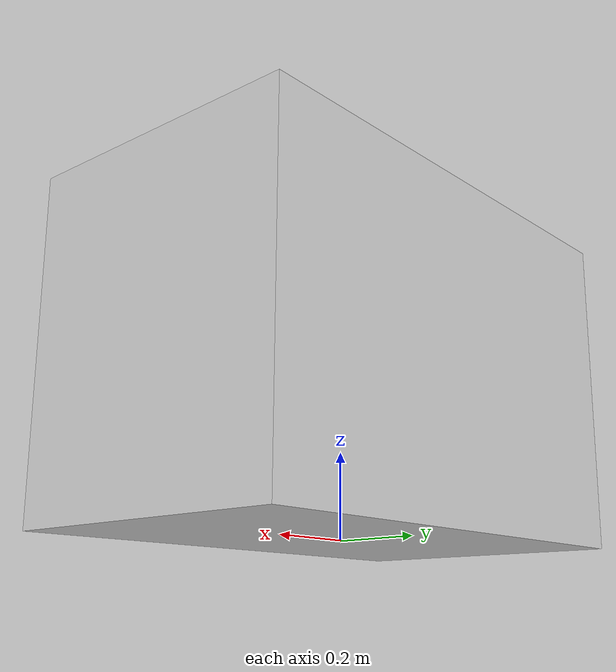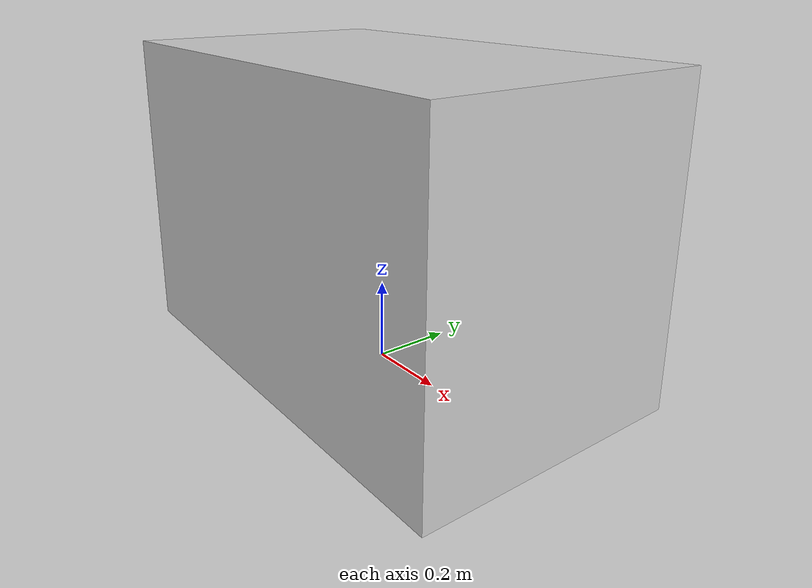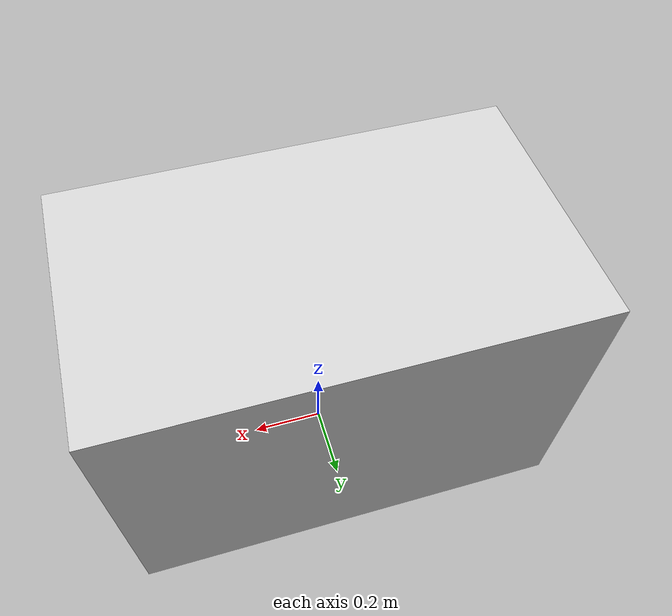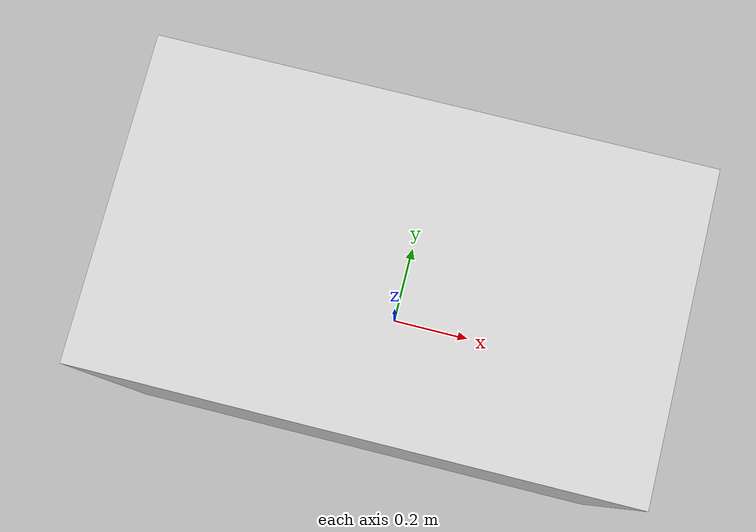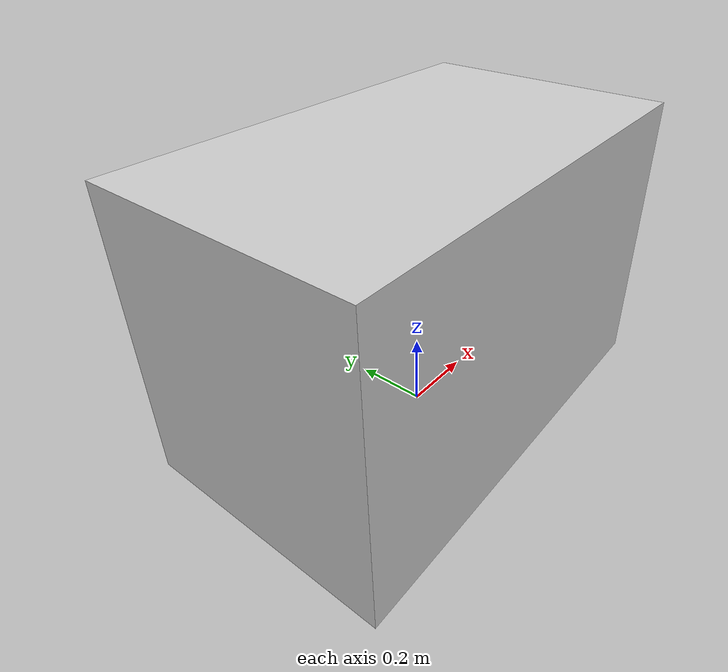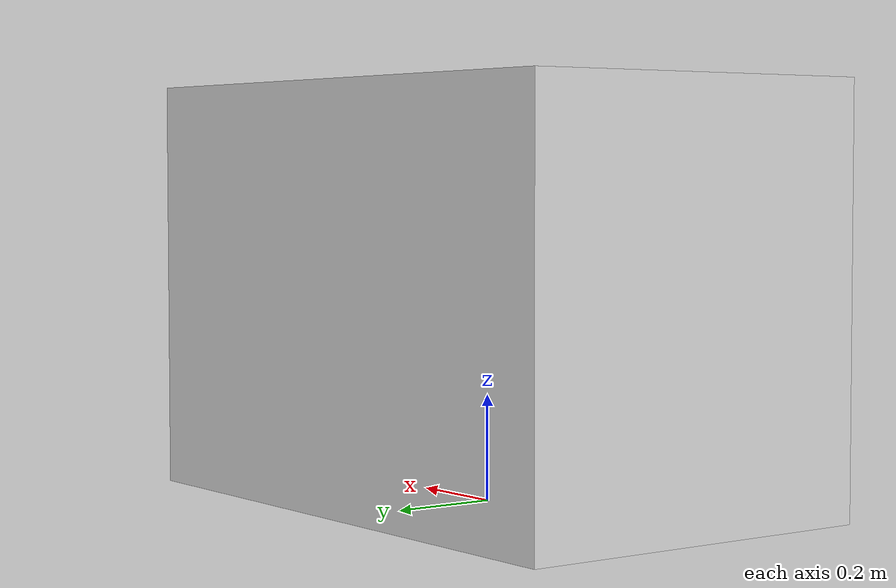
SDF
<?xml version="1.0"?>
<sdf version="1.6">
  <model name="ddw/desk">
    <link name="1_link">
      <collision name="1_col">
        <geometry>
          <box>
            <size>1.18 0.7 0.78</size>
          </box>
        </geometry>
      </collision>
      <visual name="1_vis">
        <geometry>
          <box>
            <size>1.18 0.7 0.78</size>
          </box>
        </geometry>
        <material>
          <ambient>0.8 0.8 0.8 1</ambient>
        </material>
      </visual>
      <pose>0.0 0.0 0.39 0 0 0</pose>
    </link>
    <static>true</static>
  </model>
</sdf>
